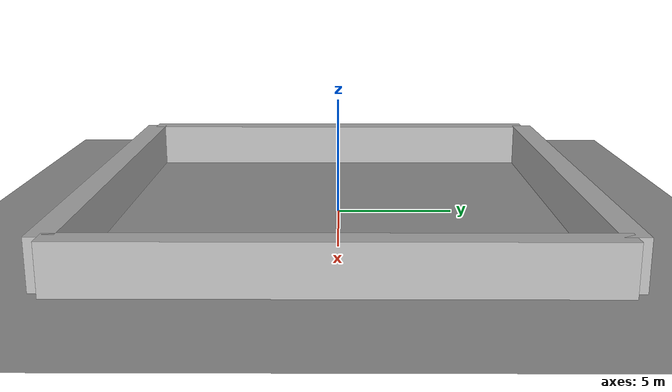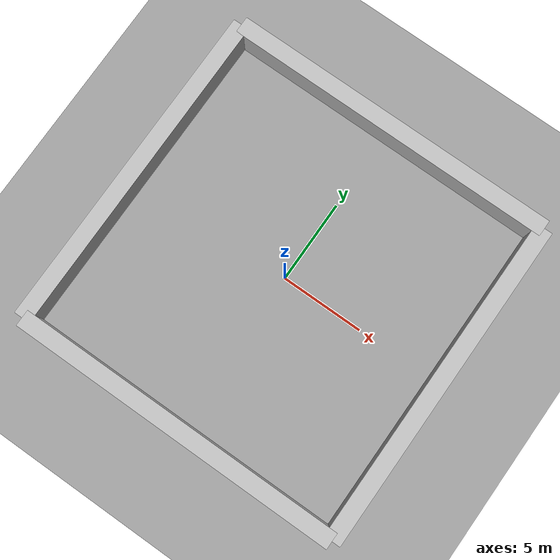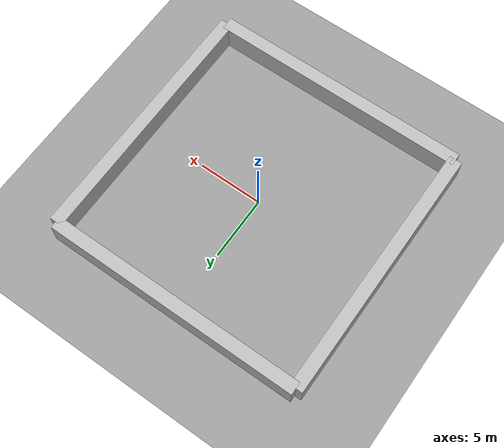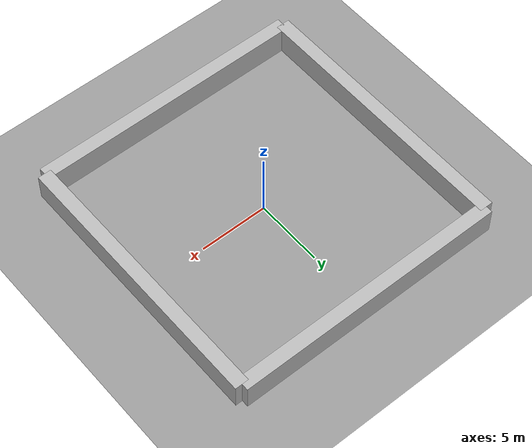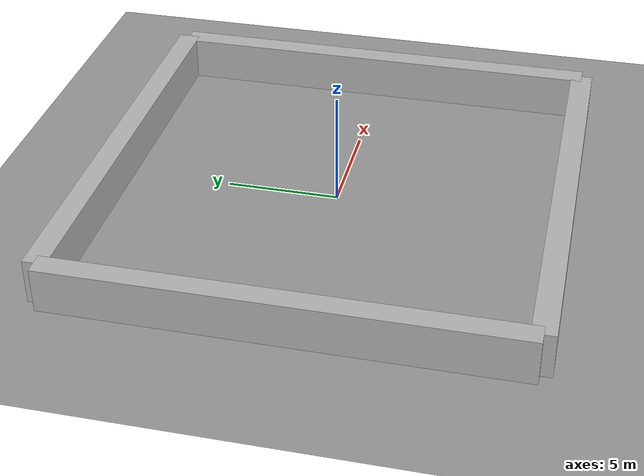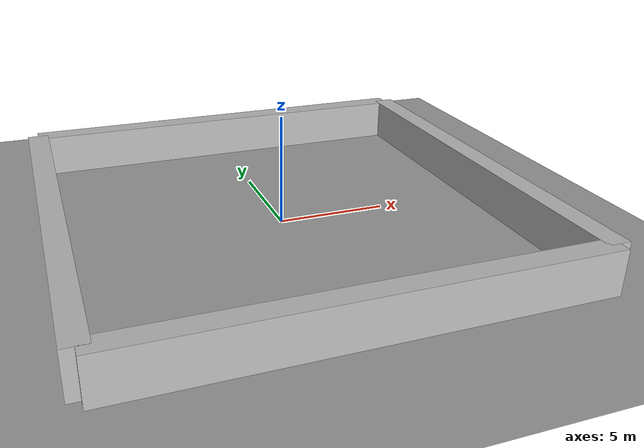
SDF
<?xml version="1.0" ?>
<sdf version='1.8'>
  <world name='enclosed_world'>
    <plugin
      filename="gz-sim-physics-system"
      name="gz::sim::systems::Physics">
    </plugin>
    <plugin
      filename="gz-sim-user-commands-system"
      name="gz::sim::systems::UserCommands">
    </plugin>
    <plugin
      filename="gz-sim-scene-broadcaster-system"
      name="gz::sim::systems::SceneBroadcaster">
    </plugin>
    <plugin
      filename="gz-sim-sensors-system"
      name="gz::sim::systems::Sensors">
      <render_engine>ogre2</render_engine>
    </plugin>
    <plugin
      filename="gz-sim-contact-system"
      name="gz::sim::systems::Contact">
    </plugin>
    <gravity>0 0 -9.81</gravity>
    <magnetic_field>6e-06 2.3e-05 -4.2e-05</magnetic_field>
    <atmosphere type='adiabatic'/>
    <physics type='ode'>
      <max_step_size>0.001</max_step_size>
      <real_time_factor>1</real_time_factor>
      <real_time_update_rate>1000</real_time_update_rate>
    </physics>
    <scene>
      <ambient>0.4 0.4 0.4 1</ambient>
      <background>0.7 0.7 0.7 1</background>
      <shadows>true</shadows>
    </scene>
    <model name='ground_plane'>
      <static>true</static>
      <link name='link'>
        <collision name='col'>
          <geometry>
            <plane>
              <normal>0 0 1</normal>
              <size>100 100</size>
            </plane>
          </geometry>
          <surface>
            <friction>
              <ode>
                <mu>1</mu>
                <mu2>1</mu2>
              </ode>
            </friction>
            <bounce/>
            <contact/>
          </surface>
        </collision>
        <visual name='vis'>
          <geometry>
            <plane>
              <normal>0 0 1</normal>
              <size>100 100</size>
            </plane>
          </geometry>
          <material>
            <ambient>0.6 0.6 0.6 1</ambient>
            <diffuse>0.6 0.6 0.6 1</diffuse>
          </material>
        </visual>
        <pose>0 0 0 0 -0 0</pose>
        <inertial>
          <pose>0 0 0 0 -0 0</pose>
          <mass>1</mass>
          <inertia>
            <ixx>1</ixx>
            <ixy>0</ixy>
            <ixz>0</ixz>
            <iyy>1</iyy>
            <iyz>0</iyz>
            <izz>1</izz>
          </inertia>
        </inertial>
        <enable_wind>false</enable_wind>
      </link>
      <pose>0 0 0 0 -0 0</pose>
      <self_collide>false</self_collide>
    </model>
    <model name='wall_north'>
      <static>true</static>
      <pose>0 10 1 0 -0 0</pose>
      <link name='l'>
        <collision name='c'>
          <geometry>
            <box>
              <size>20 1 2</size>
            </box>
          </geometry>
          <surface>
            <friction>
              <ode/>
            </friction>
            <bounce/>
            <contact/>
          </surface>
        </collision>
        <visual name='v'>
          <geometry>
            <box>
              <size>20 1 2</size>
            </box>
          </geometry>
        </visual>
        <pose>0 0 0 0 -0 0</pose>
        <inertial>
          <pose>0 0 0 0 -0 0</pose>
          <mass>1</mass>
          <inertia>
            <ixx>1</ixx>
            <ixy>0</ixy>
            <ixz>0</ixz>
            <iyy>1</iyy>
            <iyz>0</iyz>
            <izz>1</izz>
          </inertia>
        </inertial>
        <enable_wind>false</enable_wind>
      </link>
      <self_collide>false</self_collide>
    </model>
    <model name='wall_south'>
      <static>true</static>
      <pose>0 -10 1 0 -0 0</pose>
      <link name='l'>
        <collision name='c'>
          <geometry>
            <box>
              <size>20 1 2</size>
            </box>
          </geometry>
          <surface>
            <friction>
              <ode/>
            </friction>
            <bounce/>
            <contact/>
          </surface>
        </collision>
        <visual name='v'>
          <geometry>
            <box>
              <size>20 1 2</size>
            </box>
          </geometry>
        </visual>
        <pose>0 0 0 0 -0 0</pose>
        <inertial>
          <pose>0 0 0 0 -0 0</pose>
          <mass>1</mass>
          <inertia>
            <ixx>1</ixx>
            <ixy>0</ixy>
            <ixz>0</ixz>
            <iyy>1</iyy>
            <iyz>0</iyz>
            <izz>1</izz>
          </inertia>
        </inertial>
        <enable_wind>false</enable_wind>
      </link>
      <self_collide>false</self_collide>
    </model>
    <model name='wall_east'>
      <static>true</static>
      <pose>10 0 1 0 -0 0</pose>
      <link name='l'>
        <collision name='c'>
          <geometry>
            <box>
              <size>1 20 2</size>
            </box>
          </geometry>
          <surface>
            <friction>
              <ode/>
            </friction>
            <bounce/>
            <contact/>
          </surface>
        </collision>
        <visual name='v'>
          <geometry>
            <box>
              <size>1 20 2</size>
            </box>
          </geometry>
        </visual>
        <pose>0 0 0 0 -0 0</pose>
        <inertial>
          <pose>0 0 0 0 -0 0</pose>
          <mass>1</mass>
          <inertia>
            <ixx>1</ixx>
            <ixy>0</ixy>
            <ixz>0</ixz>
            <iyy>1</iyy>
            <iyz>0</iyz>
            <izz>1</izz>
          </inertia>
        </inertial>
        <enable_wind>false</enable_wind>
      </link>
      <self_collide>false</self_collide>
    </model>
    <model name='wall_west'>
      <static>true</static>
      <pose>-10 0 1 0 -0 0</pose>
      <link name='l'>
        <collision name='c'>
          <geometry>
            <box>
              <size>1 20 2</size>
            </box>
          </geometry>
          <surface>
            <friction>
              <ode/>
            </friction>
            <bounce/>
            <contact/>
          </surface>
        </collision>
        <visual name='v'>
          <geometry>
            <box>
              <size>1 20 2</size>
            </box>
          </geometry>
        </visual>
        <pose>0 0 0 0 -0 0</pose>
        <inertial>
          <pose>0 0 0 0 -0 0</pose>
          <mass>1</mass>
          <inertia>
            <ixx>1</ixx>
            <ixy>0</ixy>
            <ixz>0</ixz>
            <iyy>1</iyy>
            <iyz>0</iyz>
            <izz>1</izz>
          </inertia>
        </inertial>
        <enable_wind>false</enable_wind>
      </link>
      <self_collide>false</self_collide>
    </model>
    <light name='sun' type='directional'>
      <pose>0 0 10 0 -0 0</pose>
      <cast_shadows>true</cast_shadows>
      <intensity>1</intensity>
      <direction>-0.5 0.2 -1</direction>
      <diffuse>1 1 1 1</diffuse>
      <specular>0.1 0.1 0.1 1</specular>
      <attenuation>
        <range>10</range>
        <linear>1</linear>
        <constant>1</constant>
        <quadratic>0</quadratic>
      </attenuation>
      <spot>
        <inner_angle>0</inner_angle>
        <outer_angle>0</outer_angle>
        <falloff>0</falloff>
      </spot>
    </light>
  </world>
</sdf>
